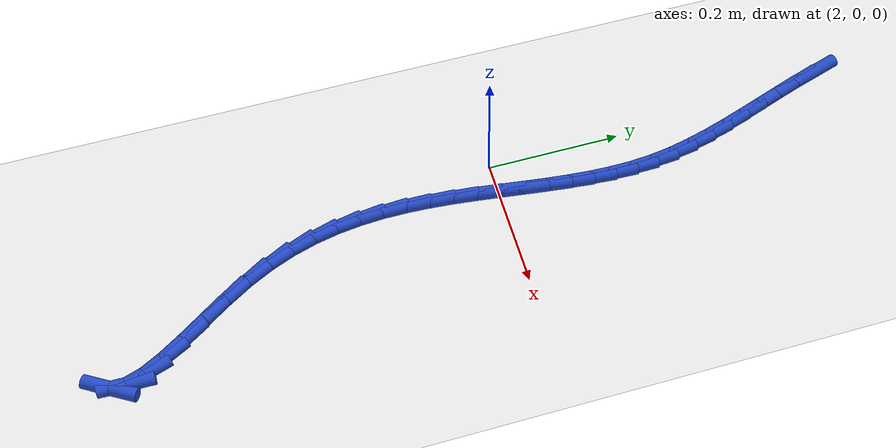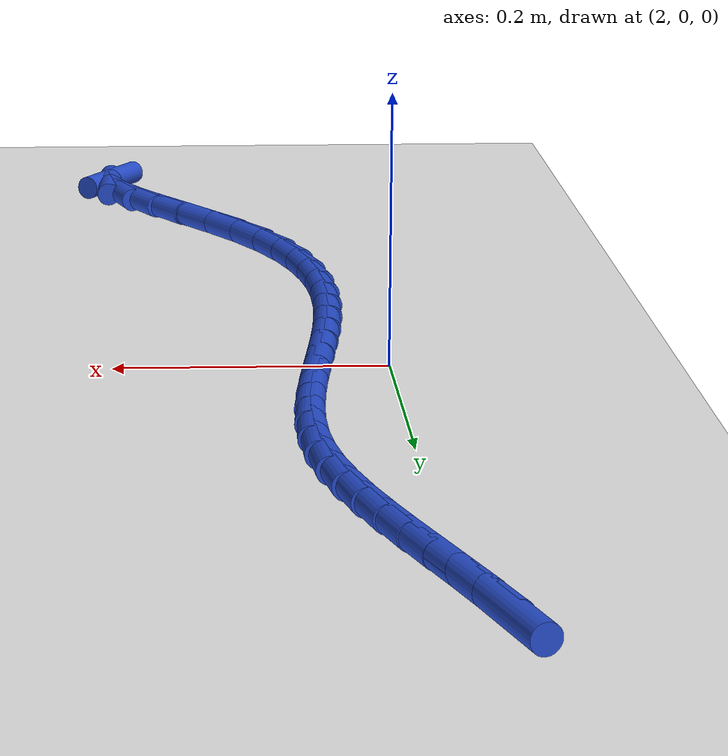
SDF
<sdf version="1.6">
 <world name="default">
  <model name="ground_plane">
   <static>1</static>
   <link name="link">
    <collision name="collision">
     <geometry><plane><normal>0 0 1</normal><size>100 100</size></plane></geometry>
     <surface><friction><ode><mu>100</mu><mu2>50</mu2></ode></friction></surface>
    </collision>
    <visual name="visual">
     <cast_shadows>0</cast_shadows>
     <geometry><plane><normal>0 0 1</normal><size>100 100</size></plane></geometry>
     <material>
      <script><uri>file://media/materials/scripts/gazebo.material</uri><name>Gazebo/WhiteGlow</name></script>
     </material>
    </visual>
   </link>
  </model>
  <model name="line">
   <link name="link_86">
    <pose>1.9770876504299142 0.5276789205614197 0.01 0 1.57 -1.2676601633554787</pose>
    <collision name="collision">
     <geometry><cylinder><radius>0.01</radius><length>0.08</length></cylinder></geometry>
    </collision>
    <visual name="visual">
     <material>
      <script><name>Gazebo/Blue</name><uri>file://media/materials/scripts/gazebo.material</uri></script>
     </material>
     <geometry><cylinder><radius>0.01</radius><length>0.08</length></cylinder></geometry>
    </visual>
   </link>
   <link name="link_87">
    <pose>1.9878682416577935 0.4932114545553059 0.01 0 1.57 -1.2457183650536767</pose>
    <collision name="collision">
     <geometry><cylinder><radius>0.01</radius><length>0.08</length></cylinder></geometry>
    </collision>
    <visual name="visual">
     <material>
      <script><name>Gazebo/Blue</name><uri>file://media/materials/scripts/gazebo.material</uri></script>
     </material>
     <geometry><cylinder><radius>0.01</radius><length>0.08</length></cylinder></geometry>
    </visual>
   </link>
   <link name="link_88">
    <pose>1.999243899049323 0.45945925713853647 0.01 0 1.57 -1.2345532991124186</pose>
    <collision name="collision">
     <geometry><cylinder><radius>0.01</radius><length>0.08</length></cylinder></geometry>
    </collision>
    <visual name="visual">
     <material>
      <script><name>Gazebo/Blue</name><uri>file://media/materials/scripts/gazebo.material</uri></script>
     </material>
     <geometry><cylinder><radius>0.01</radius><length>0.08</length></cylinder></geometry>
    </visual>
   </link>
   <link name="link_89">
    <pose>2.010834290094236 0.4262979387092297 0.01 0 1.57 -1.234622903365785</pose>
    <collision name="collision">
     <geometry><cylinder><radius>0.01</radius><length>0.08</length></cylinder></geometry>
    </collision>
    <visual name="visual">
     <material>
      <script><name>Gazebo/Blue</name><uri>file://media/materials/scripts/gazebo.material</uri></script>
     </material>
     <geometry><cylinder><radius>0.01</radius><length>0.08</length></cylinder></geometry>
    </visual>
   </link>
   <link name="link_90">
    <pose>2.0222590822822646 0.39360310966550266 0.01 0 1.57 -1.2464159751977668</pose>
    <collision name="collision">
     <geometry><cylinder><radius>0.01</radius><length>0.08</length></cylinder></geometry>
    </collision>
    <visual name="visual">
     <material>
      <script><name>Gazebo/Blue</name><uri>file://media/materials/scripts/gazebo.material</uri></script>
     </material>
     <geometry><cylinder><radius>0.01</radius><length>0.08</length></cylinder></geometry>
    </visual>
   </link>
   <link name="link_91">
    <pose>2.0331379431031413 0.3612503804054729 0.01 0 1.57 -1.2704535439009121</pose>
    <collision name="collision">
     <geometry><cylinder><radius>0.01</radius><length>0.08</length></cylinder></geometry>
    </collision>
    <visual name="visual">
     <material>
      <script><name>Gazebo/Blue</name><uri>file://media/materials/scripts/gazebo.material</uri></script>
     </material>
     <geometry><cylinder><radius>0.01</radius><length>0.08</length></cylinder></geometry>
    </visual>
   </link>
   <link name="link_92">
    <pose>2.043090540046598 0.3291153613272576 0.01 0 1.57 -1.3072374484816018</pose>
    <collision name="collision">
     <geometry><cylinder><radius>0.01</radius><length>0.08</length></cylinder></geometry>
    </collision>
    <visual name="visual">
     <material>
      <script><name>Gazebo/Blue</name><uri>file://media/materials/scripts/gazebo.material</uri></script>
     </material>
     <geometry><cylinder><radius>0.01</radius><length>0.08</length></cylinder></geometry>
    </visual>
   </link>
   <link name="link_93">
    <pose>2.051736540602368 0.29707366282897507 0.01 0 1.57 -1.3571307263361765</pose>
    <collision name="collision">
     <geometry><cylinder><radius>0.01</radius><length>0.08</length></cylinder></geometry>
    </collision>
    <visual name="visual">
     <material>
      <script><name>Gazebo/Blue</name><uri>file://media/materials/scripts/gazebo.material</uri></script>
     </material>
     <geometry><cylinder><radius>0.01</radius><length>0.08</length></cylinder></geometry>
    </visual>
   </link>
   <link name="link_94">
    <pose>2.0586956122601823 0.2650008953087424 0.01 0 1.57 -1.4201596322199292</pose>
    <collision name="collision">
     <geometry><cylinder><radius>0.01</radius><length>0.08</length></cylinder></geometry>
    </collision>
    <visual name="visual">
     <material>
      <script><name>Gazebo/Blue</name><uri>file://media/materials/scripts/gazebo.material</uri></script>
     </material>
     <geometry><cylinder><radius>0.01</radius><length>0.08</length></cylinder></geometry>
    </visual>
   </link>
   <link name="link_95">
    <pose>2.0635874225097757 0.23277266916467665 0.01 0 1.57 -1.4928342668204582</pose>
    <collision name="collision">
     <geometry><cylinder><radius>0.01</radius><length>0.08</length></cylinder></geometry>
    </collision>
    <visual name="visual">
     <material>
      <script><name>Gazebo/Blue</name><uri>file://media/materials/scripts/gazebo.material</uri></script>
     </material>
     <geometry><cylinder><radius>0.01</radius><length>0.08</length></cylinder></geometry>
    </visual>
   </link>
   <link name="link_96">
    <pose>2.0661256435332356 0.20028152624891563 0.01 0 1.57 -1.5585812397386785</pose>
    <collision name="collision">
     <geometry><cylinder><radius>0.01</radius><length>0.08</length></cylinder></geometry>
    </collision>
    <visual name="visual">
     <material>
      <script><name>Gazebo/Blue</name><uri>file://media/materials/scripts/gazebo.material</uri></script>
     </material>
     <geometry><cylinder><radius>0.01</radius><length>0.08</length></cylinder></geometry>
    </visual>
   </link>
   <link name="link_97">
    <pose>2.0665259652586743 0.16751042826573936 0.01 0 1.57 1.5298062863378659</pose>
    <collision name="collision">
     <geometry><cylinder><radius>0.01</radius><length>0.08</length></cylinder></geometry>
    </collision>
    <visual name="visual">
     <material>
      <script><name>Gazebo/Blue</name><uri>file://media/materials/scripts/gazebo.material</uri></script>
     </material>
     <geometry><cylinder><radius>0.01</radius><length>0.08</length></cylinder></geometry>
    </visual>
   </link>
   <link name="link_98">
    <pose>2.0651709760783117 0.13447239747917347 0.01 0 1.57 1.489049129070172</pose>
    <collision name="collision">
     <geometry><cylinder><radius>0.01</radius><length>0.08</length></cylinder></geometry>
    </collision>
    <visual name="visual">
     <material>
      <script><name>Gazebo/Blue</name><uri>file://media/materials/scripts/gazebo.material</uri></script>
     </material>
     <geometry><cylinder><radius>0.01</radius><length>0.08</length></cylinder></geometry>
    </visual>
   </link>
   <link name="link_99">
    <pose>2.062443376283726 0.10118047630775792 0.01 0 1.57 1.4603851777056263</pose>
    <collision name="collision">
     <geometry><cylinder><radius>0.01</radius><length>0.08</length></cylinder></geometry>
    </collision>
    <visual name="visual">
     <material>
      <script><name>Gazebo/Blue</name><uri>file://media/materials/scripts/gazebo.material</uri></script>
     </material>
     <geometry><cylinder><radius>0.01</radius><length>0.08</length></cylinder></geometry>
    </visual>
   </link>
   <link name="link_100">
    <pose>2.0587258661664927 0.06764770717003178 0.01 0 1.57 1.443390474096842</pose>
    <collision name="collision">
     <geometry><cylinder><radius>0.01</radius><length>0.08</length></cylinder></geometry>
    </collision>
    <visual name="visual">
     <material>
      <script><name>Gazebo/Blue</name><uri>file://media/materials/scripts/gazebo.material</uri></script>
     </material>
     <geometry><cylinder><radius>0.01</radius><length>0.08</length></cylinder></geometry>
    </visual>
   </link>
   <link name="link_101">
    <pose>2.0544011460181895 0.03388713248453381 0.01 0 1.57 1.4376900290612884</pose>
    <collision name="collision">
     <geometry><cylinder><radius>0.01</radius><length>0.08</length></cylinder></geometry>
    </collision>
    <visual name="visual">
     <material>
      <script><name>Gazebo/Blue</name><uri>file://media/materials/scripts/gazebo.material</uri></script>
     </material>
     <geometry><cylinder><radius>0.01</radius><length>0.08</length></cylinder></geometry>
    </visual>
   </link>
   <link name="link_102">
    <pose>2.0498519161303954 -8.820533019580565e-05 0.01 0 1.57 1.4430171899312614</pose>
    <collision name="collision">
     <geometry><cylinder><radius>0.01</radius><length>0.08</length></cylinder></geometry>
    </collision>
    <visual name="visual">
     <material>
      <script><name>Gazebo/Blue</name><uri>file://media/materials/scripts/gazebo.material</uri></script>
     </material>
     <geometry><cylinder><radius>0.01</radius><length>0.08</length></cylinder></geometry>
    </visual>
   </link>
   <link name="link_103">
    <pose>2.045460876794685 -0.03426526385561823 0.01 0 1.57 1.4592270601832764</pose>
    <collision name="collision">
     <geometry><cylinder><radius>0.01</radius><length>0.08</length></cylinder></geometry>
    </collision>
    <visual name="visual">
     <material>
      <script><name>Gazebo/Blue</name><uri>file://media/materials/scripts/gazebo.material</uri></script>
     </material>
     <geometry><cylinder><radius>0.01</radius><length>0.08</length></cylinder></geometry>
    </visual>
   </link>
   <link name="link_104">
    <pose>2.0416107283026363 -0.06863100067319416 0.01 0 1.57 1.4862720489760544</pose>
    <collision name="collision">
     <geometry><cylinder><radius>0.01</radius><length>0.08</length></cylinder></geometry>
    </collision>
    <visual name="visual">
     <material>
      <script><name>Gazebo/Blue</name><uri>file://media/materials/scripts/gazebo.material</uri></script>
     </material>
     <geometry><cylinder><radius>0.01</radius><length>0.08</length></cylinder></geometry>
    </visual>
   </link>
   <link name="link_105">
    <pose>2.0386841709458277 -0.1031723733643843 0.01 0 1.57 1.5241419996947303</pose>
    <collision name="collision">
     <geometry><cylinder><radius>0.01</radius><length>0.08</length></cylinder></geometry>
    </collision>
    <visual name="visual">
     <material>
      <script><name>Gazebo/Blue</name><uri>file://media/materials/scripts/gazebo.material</uri></script>
     </material>
     <geometry><cylinder><radius>0.01</radius><length>0.08</length></cylinder></geometry>
    </visual>
   </link>
   <link name="link_106">
    <pose>2.0370639050158346 -0.13787633951065026 0.01 0 1.57 -1.5688244827778883</pose>
    <collision name="collision">
     <geometry><cylinder><radius>0.01</radius><length>0.08</length></cylinder></geometry>
    </collision>
    <visual name="visual">
     <material>
      <script><name>Gazebo/Blue</name><uri>file://media/materials/scripts/gazebo.material</uri></script>
     </material>
     <geometry><cylinder><radius>0.01</radius><length>0.08</length></cylinder></geometry>
    </visual>
   </link>
   <link name="link_107">
    <pose>2.0371326308042357 -0.172729856693451 0.01 0 1.57 -1.5097002320106376</pose>
    <collision name="collision">
     <geometry><cylinder><radius>0.01</radius><length>0.08</length></cylinder></geometry>
    </collision>
    <visual name="visual">
     <material>
      <script><name>Gazebo/Blue</name><uri>file://media/materials/scripts/gazebo.material</uri></script>
     </material>
     <geometry><cylinder><radius>0.01</radius><length>0.08</length></cylinder></geometry>
    </visual>
   </link>
   <link name="link_108">
    <pose>2.039273048602608 -0.20771988249424816 0.01 0 1.57 -1.4406796692912927</pose>
    <collision name="collision">
     <geometry><cylinder><radius>0.01</radius><length>0.08</length></cylinder></geometry>
    </collision>
    <visual name="visual">
     <material>
      <script><name>Gazebo/Blue</name><uri>file://media/materials/scripts/gazebo.material</uri></script>
     </material>
     <geometry><cylinder><radius>0.01</radius><length>0.08</length></cylinder></geometry>
    </visual>
   </link>
   <link name="link_109">
    <pose>2.043867858702527 -0.24283337449450235 0.01 0 1.57 -1.3628559000540938</pose>
    <collision name="collision">
     <geometry><cylinder><radius>0.01</radius><length>0.08</length></cylinder></geometry>
    </collision>
    <visual name="visual">
     <material>
      <script><name>Gazebo/Blue</name><uri>file://media/materials/scripts/gazebo.material</uri></script>
     </material>
     <geometry><cylinder><radius>0.01</radius><length>0.08</length></cylinder></geometry>
    </visual>
   </link>
   <link name="link_110">
    <pose>2.051299761395571 -0.2780572902756743 0.01 0 1.57 -1.277903629326177</pose>
    <collision name="collision">
     <geometry><cylinder><radius>0.01</radius><length>0.08</length></cylinder></geometry>
    </collision>
    <visual name="visual">
     <material>
      <script><name>Gazebo/Blue</name><uri>file://media/materials/scripts/gazebo.material</uri></script>
     </material>
     <geometry><cylinder><radius>0.01</radius><length>0.08</length></cylinder></geometry>
    </visual>
   </link>
   <link name="link_111">
    <pose>2.061951456973317 -0.3133785874192247 0.01 0 1.57 -1.1880535065233577</pose>
    <collision name="collision">
     <geometry><cylinder><radius>0.01</radius><length>0.08</length></cylinder></geometry>
    </collision>
    <visual name="visual">
     <material>
      <script><name>Gazebo/Blue</name><uri>file://media/materials/scripts/gazebo.material</uri></script>
     </material>
     <geometry><cylinder><radius>0.01</radius><length>0.08</length></cylinder></geometry>
    </visual>
   </link>
   <link name="link_112">
    <pose>2.076205645727344 -0.3487842235066153 0.01 0 1.57 -1.0961419367130096</pose>
    <collision name="collision">
     <geometry><cylinder><radius>0.01</radius><length>0.08</length></cylinder></geometry>
    </collision>
    <visual name="visual">
     <material>
      <script><name>Gazebo/Blue</name><uri>file://media/materials/scripts/gazebo.material</uri></script>
     </material>
     <geometry><cylinder><radius>0.01</radius><length>0.08</length></cylinder></geometry>
    </visual>
   </link>
   <link name="link_113">
    <pose>2.094433529108859 -0.38425840716099985 0.01 0 1.57 -1.0197353214443332</pose>
    <collision name="collision">
     <geometry><cylinder><radius>0.01</radius><length>0.08</length></cylinder></geometry>
    </collision>
    <visual name="visual">
     <material>
      <script><name>Gazebo/Blue</name><uri>file://media/materials/scripts/gazebo.material</uri></script>
     </material>
     <geometry><cylinder><radius>0.01</radius><length>0.08</length></cylinder></geometry>
    </visual>
   </link>
   <link name="link_114">
    <pose>2.1161398825850966 -0.41957821577939997 0.01 0 1.57 -0.9793810754221154</pose>
    <collision name="collision">
     <geometry><cylinder><radius>0.01</radius><length>0.08</length></cylinder></geometry>
    </collision>
    <visual name="visual">
     <material>
      <script><name>Gazebo/Blue</name><uri>file://media/materials/scripts/gazebo.material</uri></script>
     </material>
     <geometry><cylinder><radius>0.01</radius><length>0.08</length></cylinder></geometry>
    </visual>
   </link>
   <link name="link_115">
    <pose>2.1393738098198045 -0.45417272809411413 0.01 0 1.57 -0.9725712894768457</pose>
    <collision name="collision">
     <geometry><cylinder><radius>0.01</radius><length>0.08</length></cylinder></geometry>
    </collision>
    <visual name="visual">
     <material>
      <script><name>Gazebo/Blue</name><uri>file://media/materials/scripts/gazebo.material</uri></script>
     </material>
     <geometry><cylinder><radius>0.01</radius><length>0.08</length></cylinder></geometry>
    </visual>
   </link>
   <link name="link_116">
    <pose>2.1620450276184124 -0.4874377004632211 0.01 0 1.57 -1.002247373696615</pose>
    <collision name="collision">
     <geometry><cylinder><radius>0.01</radius><length>0.08</length></cylinder></geometry>
    </collision>
    <visual name="visual">
     <material>
      <script><name>Gazebo/Blue</name><uri>file://media/materials/scripts/gazebo.material</uri></script>
     </material>
     <geometry><cylinder><radius>0.01</radius><length>0.08</length></cylinder></geometry>
    </visual>
   </link>
   <link name="link_117">
    <pose>2.1820632527863433 -0.5187688892447992 0.01 0 1.57 -1.0830426765411019</pose>
    <collision name="collision">
     <geometry><cylinder><radius>0.01</radius><length>0.08</length></cylinder></geometry>
    </collision>
    <visual name="visual">
     <material>
      <script><name>Gazebo/Blue</name><uri>file://media/materials/scripts/gazebo.material</uri></script>
     </material>
     <geometry><cylinder><radius>0.01</radius><length>0.08</length></cylinder></geometry>
    </visual>
   </link>
   <link name="link_118">
    <pose>2.1973382021290244 -0.5475620507969272 0.01 0 1.57 -1.2528717774965923</pose>
    <collision name="collision">
     <geometry><cylinder><radius>0.01</radius><length>0.08</length></cylinder></geometry>
    </collision>
    <visual name="visual">
     <material>
      <script><name>Gazebo/Blue</name><uri>file://media/materials/scripts/gazebo.material</uri></script>
     </material>
     <geometry><cylinder><radius>0.01</radius><length>0.08</length></cylinder></geometry>
    </visual>
   </link>
   <link name="link_119">
    <pose>2.205779592451881 -0.5732129414776841 0.01 0 1.57 1.548774521864536</pose>
    <collision name="collision">
     <geometry><cylinder><radius>0.01</radius><length>0.08</length></cylinder></geometry>
    </collision>
    <visual name="visual">
     <material>
      <script><name>Gazebo/Blue</name><uri>file://media/materials/scripts/gazebo.material</uri></script>
     </material>
     <geometry><cylinder><radius>0.01</radius><length>0.08</length></cylinder></geometry>
    </visual>
   </link>
   <link name="link_120">
    <pose>2.205297140560339 -0.5951173176451473 0.01 0 1.57 1.0229001535376399</pose>
    <collision name="collision">
     <geometry><cylinder><radius>0.01</radius><length>0.08</length></cylinder></geometry>
    </collision>
    <visual name="visual">
     <material>
      <script><name>Gazebo/Blue</name><uri>file://media/materials/scripts/gazebo.material</uri></script>
     </material>
     <geometry><cylinder><radius>0.01</radius><length>0.08</length></cylinder></geometry>
    </visual>
   </link>
  </model>
 </world>
</sdf>
